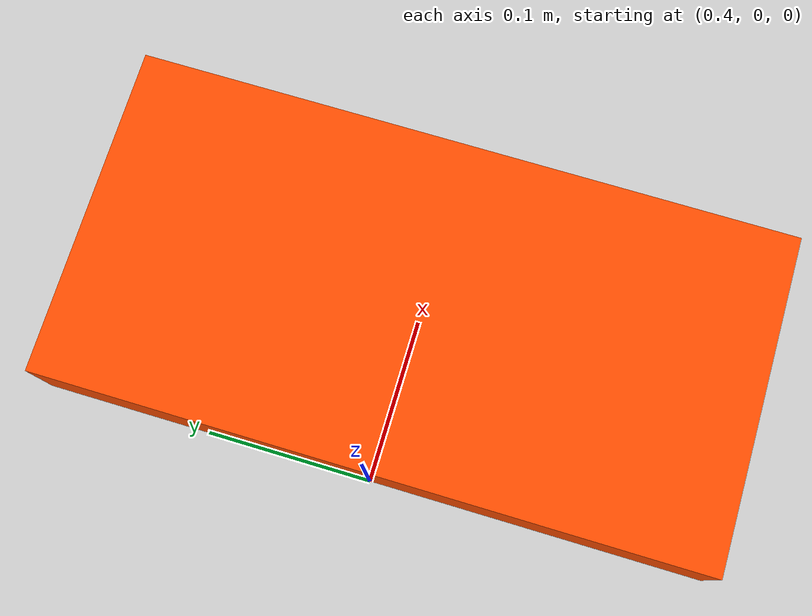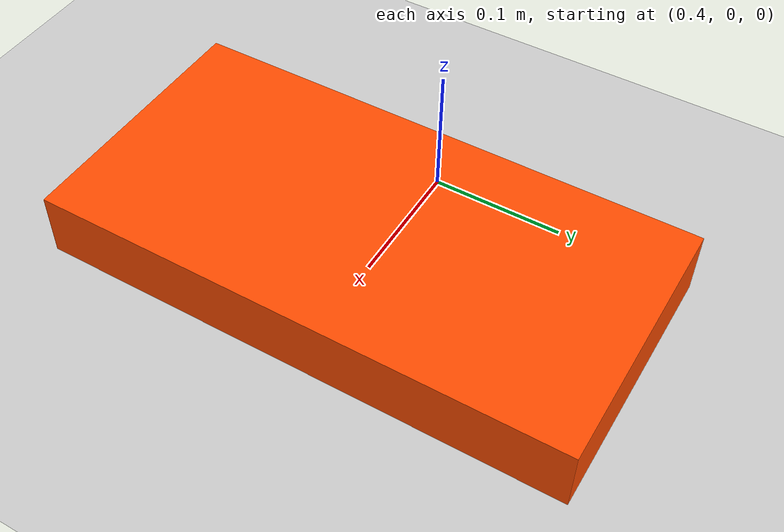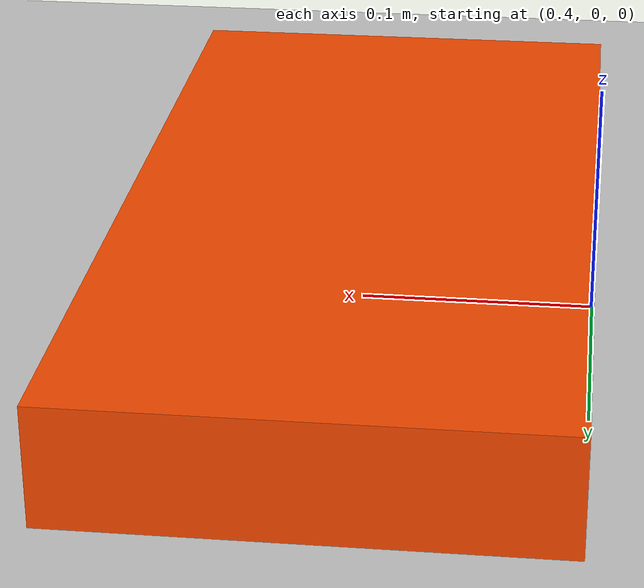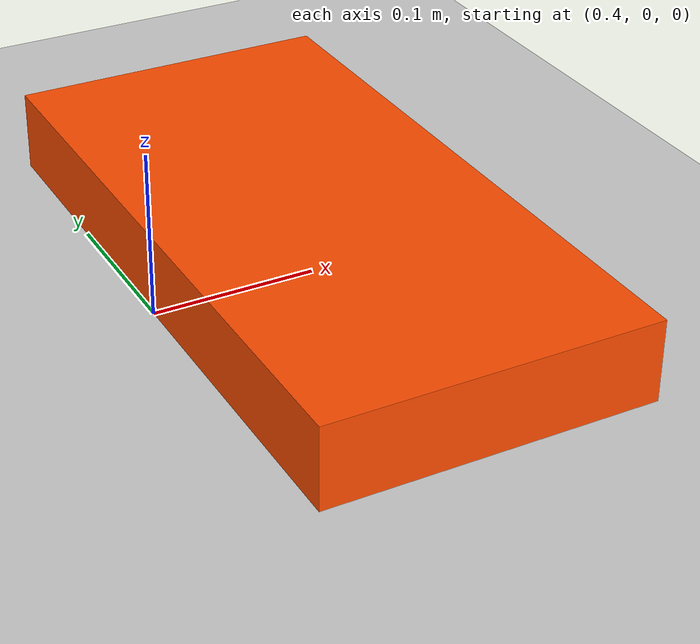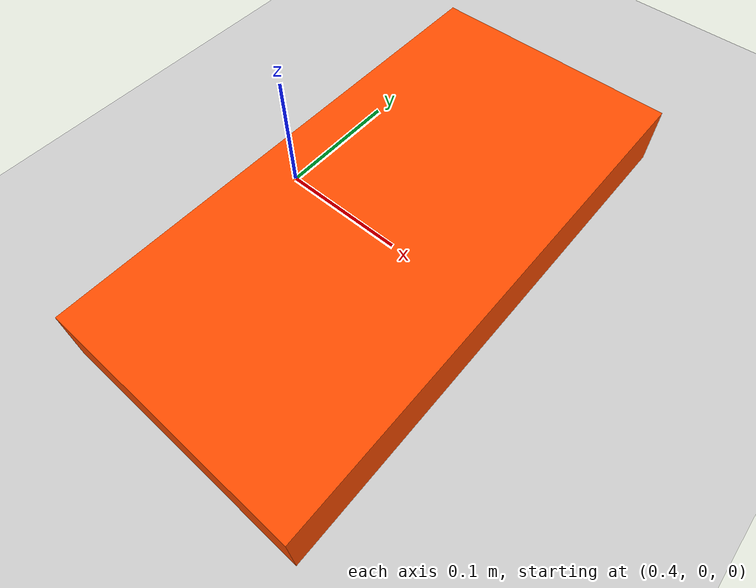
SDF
<?xml version="1.0" ?>
<sdf version="1.8">
  <world name="empty">
    <plugin filename="gz-sim-physics-system" name="gz::sim::systems::Physics">
    </plugin>
    <plugin filename="gz-sim-user-commands-system" name="gz::sim::systems::UserCommands">
    </plugin>
    <plugin filename="gz-sim-scene-broadcaster-system" name="gz::sim::systems::SceneBroadcaster">
    </plugin>

    <light type="directional" name="sun">
      <cast_shadows>true</cast_shadows>
      <pose>0 0 10 0 0 0</pose>
      <diffuse>0.8 0.8 0.8 1</diffuse>
      <specular>0.2 0.2 0.2 1</specular>
      <direction>-0.5 0.1 -0.9</direction>
    </light>

    <model name="ground_plane">
      <static>true</static>
      <link name="link">
        <collision name="collision">
          <geometry>
            <plane>
              <normal>0 0 1</normal>
              <size>100 100</size>
            </plane>
          </geometry>
        </collision>
        <visual name="visual">
          <geometry>
            <plane>
              <normal>0 0 1</normal>
              <size>100 100</size>
            </plane>
          </geometry>
          <material>
            <ambient>0.8 0.8 0.8 1</ambient>
            <diffuse>0.8 0.8 0.8 1</diffuse>
          </material>
        </visual>
      </link>
    </model>

    <model name="obstacle_brick">
      <static>true</static>
      <pose>0.5 0 0.025 0 0 0</pose>
      <link name="link">
        <collision name="collision">
          <geometry>
            <box>
              <size>0.2 0.4 0.05</size>
            </box>
          </geometry>
        </collision>
        <visual name="visual">
          <geometry>
            <box>
              <size>0.2 0.4 0.05</size>
            </box>
          </geometry>
          <material>
            <ambient>1.0 0.3 0.0 1</ambient>
            <diffuse>1.0 0.3 0.0 1</diffuse>
          </material>
        </visual>
      </link>
    </model>

  </world>
</sdf>
